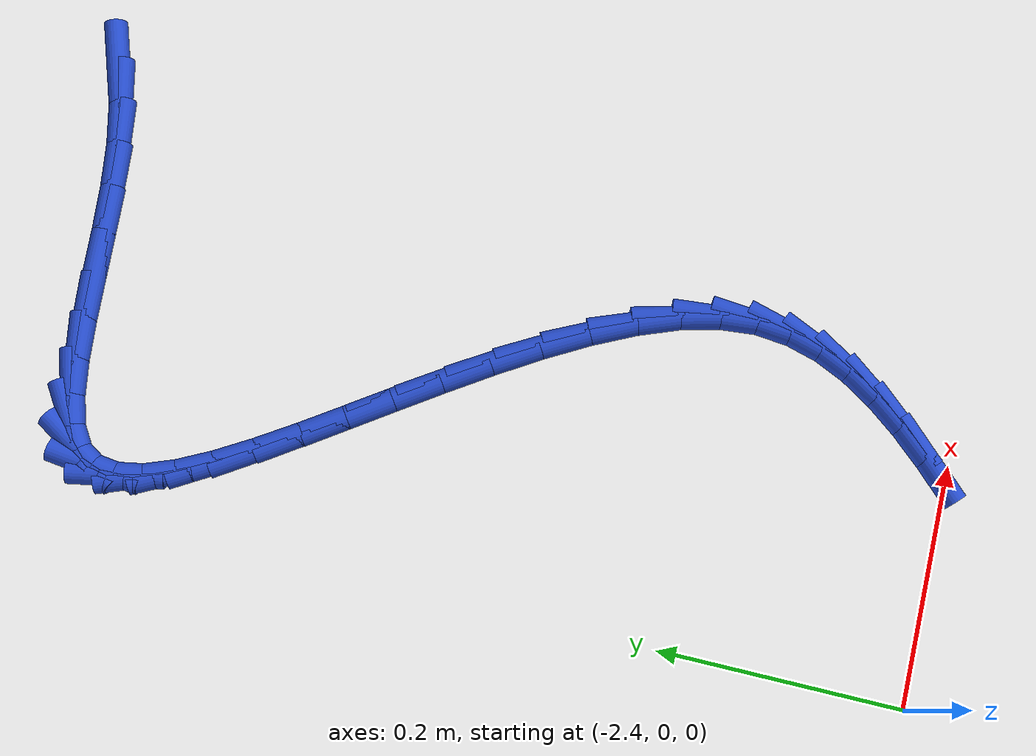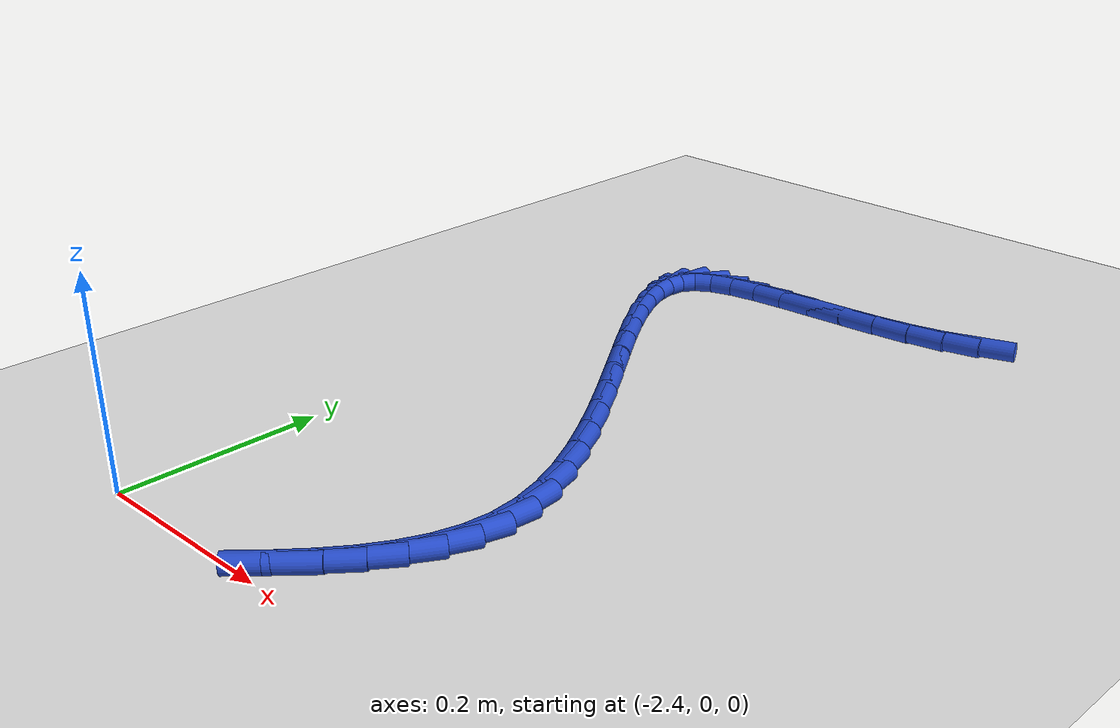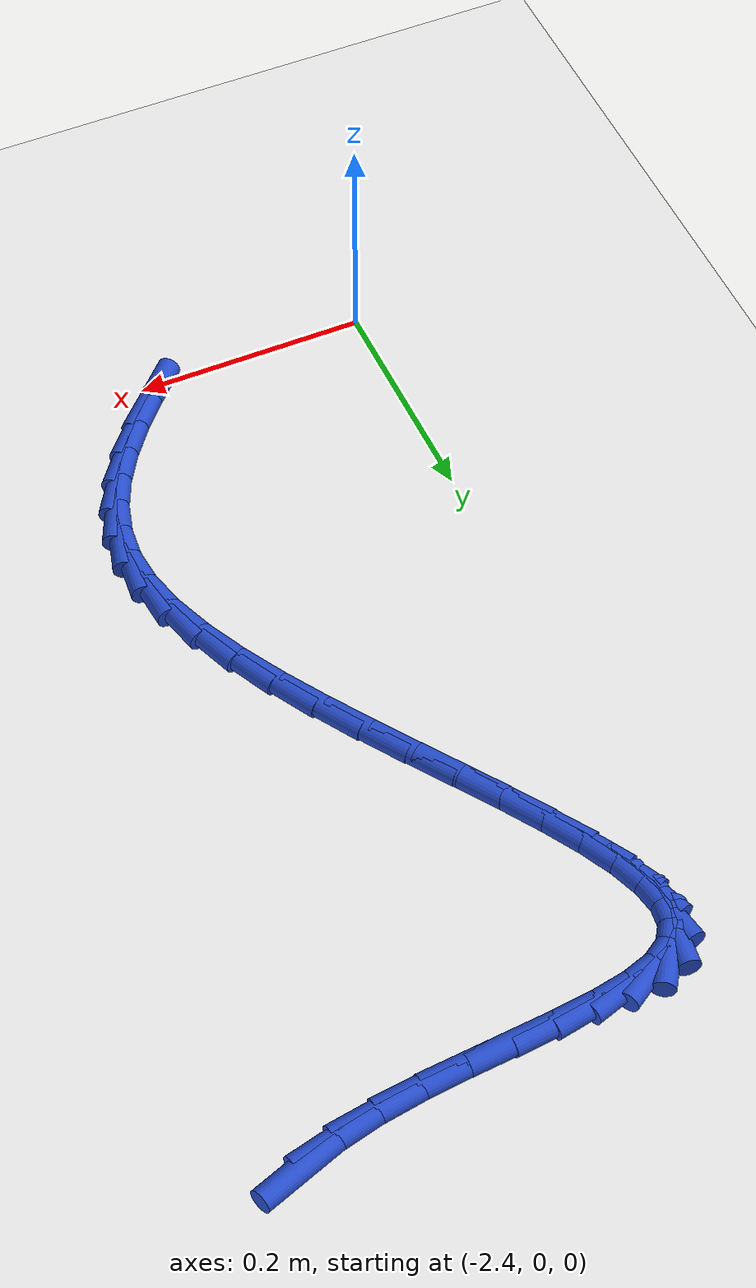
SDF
<sdf version="1.6">
 <world name="default">
  <model name="ground_plane">
   <static>1</static>
   <link name="link">
    <collision name="collision">
     <geometry><plane><normal>0 0 1</normal><size>100 100</size></plane></geometry>
     <surface><friction><ode><mu>100</mu><mu2>50</mu2></ode></friction></surface>
    </collision>
    <visual name="visual">
     <cast_shadows>0</cast_shadows>
     <geometry><plane><normal>0 0 1</normal><size>100 100</size></plane></geometry>
     <material>
      <script><uri>file://media/materials/scripts/gazebo.material</uri><name>Gazebo/WhiteGlow</name></script>
     </material>
    </visual>
   </link>
  </model>
  <model name="line">
   <link name="link_102">
    <pose>-2.0282593574554864 0.7521910239049677 0.01 0 1.57 0.3391192617183183</pose>
    <collision name="collision">
     <geometry><cylinder><radius>0.01</radius><length>0.08</length></cylinder></geometry>
    </collision>
    <visual name="visual">
     <material>
      <script><name>Gazebo/Blue</name><uri>file://media/materials/scripts/gazebo.material</uri></script>
     </material>
     <geometry><cylinder><radius>0.01</radius><length>0.08</length></cylinder></geometry>
    </visual>
   </link>
   <link name="link_103">
    <pose>-2.0604337395210375 0.7408416315572388 0.01 0 1.57 0.22853827593893122</pose>
    <collision name="collision">
     <geometry><cylinder><radius>0.01</radius><length>0.08</length></cylinder></geometry>
    </collision>
    <visual name="visual">
     <material>
      <script><name>Gazebo/Blue</name><uri>file://media/materials/scripts/gazebo.material</uri></script>
     </material>
     <geometry><cylinder><radius>0.01</radius><length>0.08</length></cylinder></geometry>
    </visual>
   </link>
   <link name="link_104">
    <pose>-2.0957757211422177 0.7326210149425776 0.01 0 1.57 0.14710145297666546</pose>
    <collision name="collision">
     <geometry><cylinder><radius>0.01</radius><length>0.08</length></cylinder></geometry>
    </collision>
    <visual name="visual">
     <material>
      <script><name>Gazebo/Blue</name><uri>file://media/materials/scripts/gazebo.material</uri></script>
     </material>
     <geometry><cylinder><radius>0.01</radius><length>0.08</length></cylinder></geometry>
    </visual>
   </link>
   <link name="link_105">
    <pose>-2.133512086685349 0.7270295515172545 0.01 0 1.57 0.09798317878341813</pose>
    <collision name="collision">
     <geometry><cylinder><radius>0.01</radius><length>0.08</length></cylinder></geometry>
    </collision>
    <visual name="visual">
     <material>
      <script><name>Gazebo/Blue</name><uri>file://media/materials/scripts/gazebo.material</uri></script>
     </material>
     <geometry><cylinder><radius>0.01</radius><length>0.08</length></cylinder></geometry>
    </visual>
   </link>
   <link name="link_106">
    <pose>-2.172316019957649 0.7232152041600719 0.01 0 1.57 0.07486953056015273</pose>
    <collision name="collision">
     <geometry><cylinder><radius>0.01</radius><length>0.08</length></cylinder></geometry>
    </collision>
    <visual name="visual">
     <material>
      <script><name>Gazebo/Blue</name><uri>file://media/materials/scripts/gazebo.material</uri></script>
     </material>
     <geometry><cylinder><radius>0.01</radius><length>0.08</length></cylinder></geometry>
    </visual>
   </link>
   <link name="link_107">
    <pose>-2.2108579528226673 0.720324183899966 0.01 0 1.57 0.07621081947161666</pose>
    <collision name="collision">
     <geometry><cylinder><radius>0.01</radius><length>0.08</length></cylinder></geometry>
    </collision>
    <visual name="visual">
     <material>
      <script><name>Gazebo/Blue</name><uri>file://media/materials/scripts/gazebo.material</uri></script>
     </material>
     <geometry><cylinder><radius>0.01</radius><length>0.08</length></cylinder></geometry>
    </visual>
   </link>
   <link name="link_108">
    <pose>-2.247808317143952 0.7175027017658736 0.01 0 1.57 0.10556597839441882</pose>
    <collision name="collision">
     <geometry><cylinder><radius>0.01</radius><length>0.08</length></cylinder></geometry>
    </collision>
    <visual name="visual">
     <material>
      <script><name>Gazebo/Blue</name><uri>file://media/materials/scripts/gazebo.material</uri></script>
     </material>
     <geometry><cylinder><radius>0.01</radius><length>0.08</length></cylinder></geometry>
    </visual>
   </link>
   <link name="link_109">
    <pose>-2.2818375447850543 0.7138969687867306 0.01 0 1.57 0.17430544931623201</pose>
    <collision name="collision">
     <geometry><cylinder><radius>0.01</radius><length>0.08</length></cylinder></geometry>
    </collision>
    <visual name="visual">
     <material>
      <script><name>Gazebo/Blue</name><uri>file://media/materials/scripts/gazebo.material</uri></script>
     </material>
     <geometry><cylinder><radius>0.01</radius><length>0.08</length></cylinder></geometry>
    </visual>
   </link>
   <link name="link_110">
    <pose>-2.3116160676095214 0.7086531959914728 0.01 0 1.57 0.30940908230685216</pose>
    <collision name="collision">
     <geometry><cylinder><radius>0.01</radius><length>0.08</length></cylinder></geometry>
    </collision>
    <visual name="visual">
     <material>
      <script><name>Gazebo/Blue</name><uri>file://media/materials/scripts/gazebo.material</uri></script>
     </material>
     <geometry><cylinder><radius>0.01</radius><length>0.08</length></cylinder></geometry>
    </visual>
   </link>
   <link name="link_111">
    <pose>-2.335814317480904 0.7009175944090369 0.01 0 1.57 0.5699802974684703</pose>
    <collision name="collision">
     <geometry><cylinder><radius>0.01</radius><length>0.08</length></cylinder></geometry>
    </collision>
    <visual name="visual">
     <material>
      <script><name>Gazebo/Blue</name><uri>file://media/materials/scripts/gazebo.material</uri></script>
     </material>
     <geometry><cylinder><radius>0.01</radius><length>0.08</length></cylinder></geometry>
    </visual>
   </link>
   <link name="link_112">
    <pose>-2.3531030378811537 0.6898365489039422 0.01 0 1.57 1.0053834695176584</pose>
    <collision name="collision">
     <geometry><cylinder><radius>0.01</radius><length>0.08</length></cylinder></geometry>
    </collision>
    <visual name="visual">
     <material>
      <script><name>Gazebo/Blue</name><uri>file://media/materials/scripts/gazebo.material</uri></script>
     </material>
     <geometry><cylinder><radius>0.01</radius><length>0.08</length></cylinder></geometry>
    </visual>
   </link>
   <link name="link_113">
    <pose>-2.3626297449748446 0.6748224108445772 0.01 0 1.57 1.4459981860191413</pose>
    <collision name="collision">
     <geometry><cylinder><radius>0.01</radius><length>0.08</length></cylinder></geometry>
    </collision>
    <visual name="visual">
     <material>
      <script><name>Gazebo/Blue</name><uri>file://media/materials/scripts/gazebo.material</uri></script>
     </material>
     <geometry><cylinder><radius>0.01</radius><length>0.08</length></cylinder></geometry>
    </visual>
   </link>
   <link name="link_114">
    <pose>-2.3649797758056046 0.6560896165474235 0.01 0 1.57 -1.3928880537280734</pose>
    <collision name="collision">
     <geometry><cylinder><radius>0.01</radius><length>0.08</length></cylinder></geometry>
    </collision>
    <visual name="visual">
     <material>
      <script><name>Gazebo/Blue</name><uri>file://media/materials/scripts/gazebo.material</uri></script>
     </material>
     <geometry><cylinder><radius>0.01</radius><length>0.08</length></cylinder></geometry>
    </visual>
   </link>
   <link name="link_115">
    <pose>-2.3610084316465247 0.6340032012304868 0.01 0 1.57 -1.2108272081927374</pose>
    <collision name="collision">
     <geometry><cylinder><radius>0.01</radius><length>0.08</length></cylinder></geometry>
    </collision>
    <visual name="visual">
     <material>
      <script><name>Gazebo/Blue</name><uri>file://media/materials/scripts/gazebo.material</uri></script>
     </material>
     <geometry><cylinder><radius>0.01</radius><length>0.08</length></cylinder></geometry>
    </visual>
   </link>
   <link name="link_116">
    <pose>-2.3515710137706938 0.6089282001117736 0.01 0 1.57 -1.1014201138338693</pose>
    <collision name="collision">
     <geometry><cylinder><radius>0.01</radius><length>0.08</length></cylinder></geometry>
    </collision>
    <visual name="visual">
     <material>
      <script><name>Gazebo/Blue</name><uri>file://media/materials/scripts/gazebo.material</uri></script>
     </material>
     <geometry><cylinder><radius>0.01</radius><length>0.08</length></cylinder></geometry>
    </visual>
   </link>
   <link name="link_117">
    <pose>-2.337522823451204 0.5812296484092901 0.01 0 1.57 -1.0345741896778269</pose>
    <collision name="collision">
     <geometry><cylinder><radius>0.01</radius><length>0.08</length></cylinder></geometry>
    </collision>
    <visual name="visual">
     <material>
      <script><name>Gazebo/Blue</name><uri>file://media/materials/scripts/gazebo.material</uri></script>
     </material>
     <geometry><cylinder><radius>0.01</radius><length>0.08</length></cylinder></geometry>
    </visual>
   </link>
   <link name="link_118">
    <pose>-2.3197191619611415 0.5512725813410418 0.01 0 1.57 -0.9943995714564848</pose>
    <collision name="collision">
     <geometry><cylinder><radius>0.01</radius><length>0.08</length></cylinder></geometry>
    </collision>
    <visual name="visual">
     <material>
      <script><name>Gazebo/Blue</name><uri>file://media/materials/scripts/gazebo.material</uri></script>
     </material>
     <geometry><cylinder><radius>0.01</radius><length>0.08</length></cylinder></geometry>
    </visual>
   </link>
   <link name="link_119">
    <pose>-2.2990153305735994 0.5194220341250351 0.01 0 1.57 -0.9725759162166001</pose>
    <collision name="collision">
     <geometry><cylinder><radius>0.01</radius><length>0.08</length></cylinder></geometry>
    </collision>
    <visual name="visual">
     <material>
      <script><name>Gazebo/Blue</name><uri>file://media/materials/scripts/gazebo.material</uri></script>
     </material>
     <geometry><cylinder><radius>0.01</radius><length>0.08</length></cylinder></geometry>
    </visual>
   </link>
   <link name="link_120">
    <pose>-2.276266630561665 0.4860430419792756 0.01 0 1.57 -0.9647763267599291</pose>
    <collision name="collision">
     <geometry><cylinder><radius>0.01</radius><length>0.08</length></cylinder></geometry>
    </collision>
    <visual name="visual">
     <material>
      <script><name>Gazebo/Blue</name><uri>file://media/materials/scripts/gazebo.material</uri></script>
     </material>
     <geometry><cylinder><radius>0.01</radius><length>0.08</length></cylinder></geometry>
    </visual>
   </link>
   <link name="link_121">
    <pose>-2.25232836319843 0.45150064012176966 0.01 0 1.57 -0.9689750802906021</pose>
    <collision name="collision">
     <geometry><cylinder><radius>0.01</radius><length>0.08</length></cylinder></geometry>
    </collision>
    <visual name="visual">
     <material>
      <script><name>Gazebo/Blue</name><uri>file://media/materials/scripts/gazebo.material</uri></script>
     </material>
     <geometry><cylinder><radius>0.01</radius><length>0.08</length></cylinder></geometry>
    </visual>
   </link>
   <link name="link_122">
    <pose>-2.228055829756984 0.4161598637705234 0.01 0 1.57 -0.984690933067321</pose>
    <collision name="collision">
     <geometry><cylinder><radius>0.01</radius><length>0.08</length></cylinder></geometry>
    </collision>
    <visual name="visual">
     <material>
      <script><name>Gazebo/Blue</name><uri>file://media/materials/scripts/gazebo.material</uri></script>
     </material>
     <geometry><cylinder><radius>0.01</radius><length>0.08</length></cylinder></geometry>
    </visual>
   </link>
   <link name="link_123">
    <pose>-2.2043043315104165 0.380385748143543 0.01 0 1.57 -1.0127258527822438</pose>
    <collision name="collision">
     <geometry><cylinder><radius>0.01</radius><length>0.08</length></cylinder></geometry>
    </collision>
    <visual name="visual">
     <material>
      <script><name>Gazebo/Blue</name><uri>file://media/materials/scripts/gazebo.material</uri></script>
     </material>
     <geometry><cylinder><radius>0.01</radius><length>0.08</length></cylinder></geometry>
    </visual>
   </link>
   <link name="link_124">
    <pose>-2.1819291697318177 0.3445433284588337 0.01 0 1.57 -1.0552267230885446</pose>
    <collision name="collision">
     <geometry><cylinder><radius>0.01</radius><length>0.08</length></cylinder></geometry>
    </collision>
    <visual name="visual">
     <material>
      <script><name>Gazebo/Blue</name><uri>file://media/materials/scripts/gazebo.material</uri></script>
     </material>
     <geometry><cylinder><radius>0.01</radius><length>0.08</length></cylinder></geometry>
    </visual>
   </link>
   <link name="link_125">
    <pose>-2.161785645694277 0.308997639934402 0.01 0 1.57 -1.1160256186894446</pose>
    <collision name="collision">
     <geometry><cylinder><radius>0.01</radius><length>0.08</length></cylinder></geometry>
    </collision>
    <visual name="visual">
     <material>
      <script><name>Gazebo/Blue</name><uri>file://media/materials/scripts/gazebo.material</uri></script>
     </material>
     <geometry><cylinder><radius>0.01</radius><length>0.08</length></cylinder></geometry>
    </visual>
   </link>
   <link name="link_126">
    <pose>-2.1447290606708846 0.27411371778825383 0.01 0 1.57 -1.2012478783270042</pose>
    <collision name="collision">
     <geometry><cylinder><radius>0.01</radius><length>0.08</length></cylinder></geometry>
    </collision>
    <visual name="visual">
     <material>
      <script><name>Gazebo/Blue</name><uri>file://media/materials/scripts/gazebo.material</uri></script>
     </material>
     <geometry><cylinder><radius>0.01</radius><length>0.08</length></cylinder></geometry>
    </visual>
   </link>
   <link name="link_127">
    <pose>-2.1316147159347296 0.24025659723839518 0.01 0 1.57 -1.320014132544383</pose>
    <collision name="collision">
     <geometry><cylinder><radius>0.01</radius><length>0.08</length></cylinder></geometry>
    </collision>
    <visual name="visual">
     <material>
      <script><name>Gazebo/Blue</name><uri>file://media/materials/scripts/gazebo.material</uri></script>
     </material>
     <geometry><cylinder><radius>0.01</radius><length>0.08</length></cylinder></geometry>
    </visual>
   </link>
   <link name="link_128">
    <pose>-2.123297912758904 0.20779131350283234 0.01 0 1.57 -1.4824284276387933</pose>
    <collision name="collision">
     <geometry><cylinder><radius>0.01</radius><length>0.08</length></cylinder></geometry>
    </collision>
    <visual name="visual">
     <material>
      <script><name>Gazebo/Blue</name><uri>file://media/materials/scripts/gazebo.material</uri></script>
     </material>
     <geometry><cylinder><radius>0.01</radius><length>0.08</length></cylinder></geometry>
    </visual>
   </link>
   <link name="link_129">
    <pose>-2.1205749297434853 0.177057398497618 0.01 0 1.57 1.4723993244535247</pose>
    <collision name="collision">
     <geometry><cylinder><radius>0.01</radius><length>0.08</length></cylinder></geometry>
    </collision>
    <visual name="visual">
     <material>
      <script><name>Gazebo/Blue</name><uri>file://media/materials/scripts/gazebo.material</uri></script>
     </material>
     <geometry><cylinder><radius>0.01</radius><length>0.08</length></cylinder></geometry>
    </visual>
   </link>
   <link name="link_130">
    <pose>-2.1234386887482195 0.14804725906838634 0.01 0 1.57 1.2927131978808286</pose>
    <collision name="collision">
     <geometry><cylinder><radius>0.01</radius><length>0.08</length></cylinder></geometry>
    </collision>
    <visual name="visual">
     <material>
      <script><name>Gazebo/Blue</name><uri>file://media/materials/scripts/gazebo.material</uri></script>
     </material>
     <geometry><cylinder><radius>0.01</radius><length>0.08</length></cylinder></geometry>
    </visual>
   </link>
   <link name="link_131">
    <pose>-2.131302115081889 0.12050268943317173 0.01 0 1.57 1.1351087741862258</pose>
    <collision name="collision">
     <geometry><cylinder><radius>0.01</radius><length>0.08</length></cylinder></geometry>
    </collision>
    <visual name="visual">
     <material>
      <script><name>Gazebo/Blue</name><uri>file://media/materials/scripts/gazebo.material</uri></script>
     </material>
     <geometry><cylinder><radius>0.01</radius><length>0.08</length></cylinder></geometry>
    </visual>
   </link>
   <link name="link_132">
    <pose>-2.143565274945959 0.0941599274758065 0.01 0 1.57 1.0069772331222209</pose>
    <collision name="collision">
     <geometry><cylinder><radius>0.01</radius><length>0.08</length></cylinder></geometry>
    </collision>
    <visual name="visual">
     <material>
      <script><name>Gazebo/Blue</name><uri>file://media/materials/scripts/gazebo.material</uri></script>
     </material>
     <geometry><cylinder><radius>0.01</radius><length>0.08</length></cylinder></geometry>
    </visual>
   </link>
   <link name="link_133">
    <pose>-2.1596282345418967 0.06875521108012325 0.01 0 1.57 0.9090469760385655</pose>
    <collision name="collision">
     <geometry><cylinder><radius>0.01</radius><length>0.08</length></cylinder></geometry>
    </collision>
    <visual name="visual">
     <material>
      <script><name>Gazebo/Blue</name><uri>file://media/materials/scripts/gazebo.material</uri></script>
     </material>
     <geometry><cylinder><radius>0.01</radius><length>0.08</length></cylinder></geometry>
    </visual>
   </link>
   <link name="link_134">
    <pose>-2.178891060071167 0.04402477812995481 0.01 0 1.57 0.8385531535214791</pose>
    <collision name="collision">
     <geometry><cylinder><radius>0.01</radius><length>0.08</length></cylinder></geometry>
    </collision>
    <visual name="visual">
     <material>
      <script><name>Gazebo/Blue</name><uri>file://media/materials/scripts/gazebo.material</uri></script>
     </material>
     <geometry><cylinder><radius>0.01</radius><length>0.08</length></cylinder></geometry>
    </visual>
   </link>
   <link name="link_135">
    <pose>-2.2007538177352366 0.019704866509132963 0.01 0 1.57 0.7918598312948829</pose>
    <collision name="collision">
     <geometry><cylinder><radius>0.01</radius><length>0.08</length></cylinder></geometry>
    </collision>
    <visual name="visual">
     <material>
      <script><name>Gazebo/Blue</name><uri>file://media/materials/scripts/gazebo.material</uri></script>
     </material>
     <geometry><cylinder><radius>0.01</radius><length>0.08</length></cylinder></geometry>
    </visual>
   </link>
  </model>
 </world>
</sdf>
